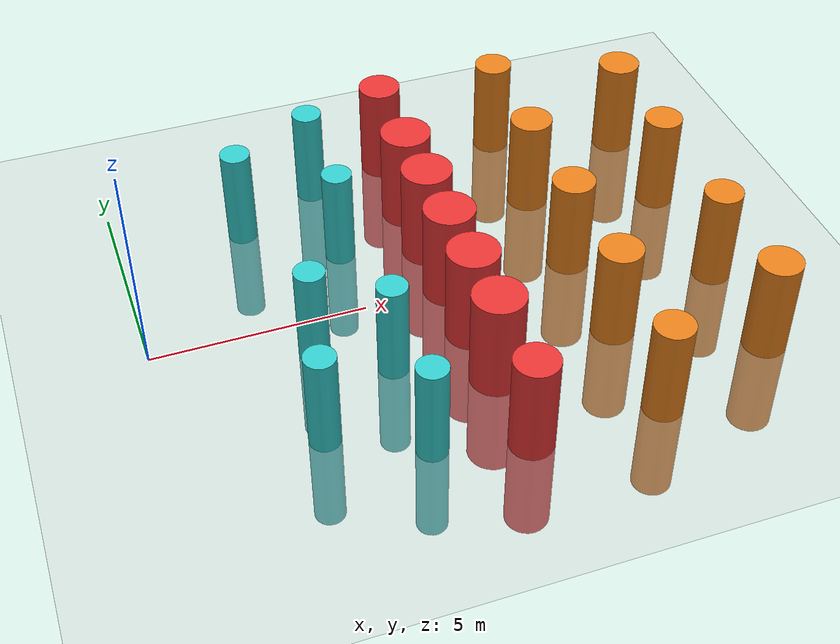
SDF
<?xml version="1.0" ?>
<sdf version="1.6">
  <world name="dense_forest">

    <physics type="ode">
      <max_step_size>0.001</max_step_size>
      <real_time_factor>1.0</real_time_factor>
      <real_time_update_rate>1000</real_time_update_rate>
      <gravity>0 0 -9.81</gravity>
      <ode>
        <solver><type>quick</type><iters>50</iters><sor>1.3</sor></solver>
        <constraints>
          <cfm>0.0</cfm><erp>0.2</erp>
          <contact_max_correcting_vel>100.0</contact_max_correcting_vel>
          <contact_surface_layer>0.001</contact_surface_layer>
        </constraints>
      </ode>
    </physics>

    <scene>
      <ambient>0.5 0.5 0.5 1.0</ambient>
      <shadows>false</shadows>
      <grid>false</grid>
    </scene>

    <include><uri>model://sun</uri></include>
    <include><uri>model://ground_plane</uri></include>

    <!-- ===== Section A: Sparse entrance (x=3~5), all gaps ≥ 2.0m → passable ===== -->
    <!-- Section A: 柱子間距 ≥ 2.0m (含膨脹後淨通道 ≥ 0.8m) -->
    <!-- 有效半徑 = 柱半徑 + inflation(0.2) + B-spline margin(0.1) ≈ 柱半徑 + 0.3 -->
    <!-- 兩柱間距需 ≥ 2×有效半徑 + 0.8m 通道 -->
    <model name="a1"><static>true</static><pose>3 -3.5 0 0 0 0</pose>
      <link name="link">
        <collision name="c"><geometry><cylinder><radius>0.35</radius><length>4.8</length></cylinder></geometry></collision>
        <visual name="v"><geometry><cylinder><radius>0.35</radius><length>4.8</length></cylinder></geometry>
          <material><ambient>0.2 0.8 0.8 1</ambient><diffuse>0.2 0.8 0.8 1</diffuse></material></visual>
      </link></model>

    <model name="a2"><static>true</static><pose>3.5 -1.0 0 0 0 0</pose>
      <link name="link">
        <collision name="c"><geometry><cylinder><radius>0.35</radius><length>4.8</length></cylinder></geometry></collision>
        <visual name="v"><geometry><cylinder><radius>0.35</radius><length>4.8</length></cylinder></geometry>
          <material><ambient>0.2 0.8 0.8 1</ambient><diffuse>0.2 0.8 0.8 1</diffuse></material></visual>
      </link></model>

    <model name="a3"><static>true</static><pose>3 3.5 0 0 0 0</pose>
      <link name="link">
        <collision name="c"><geometry><cylinder><radius>0.35</radius><length>4.8</length></cylinder></geometry></collision>
        <visual name="v"><geometry><cylinder><radius>0.35</radius><length>4.8</length></cylinder></geometry>
          <material><ambient>0.2 0.8 0.8 1</ambient><diffuse>0.2 0.8 0.8 1</diffuse></material></visual>
      </link></model>

    <model name="a4"><static>true</static><pose>5 -4.5 0 0 0 0</pose>
      <link name="link">
        <collision name="c"><geometry><cylinder><radius>0.35</radius><length>4.8</length></cylinder></geometry></collision>
        <visual name="v"><geometry><cylinder><radius>0.35</radius><length>4.8</length></cylinder></geometry>
          <material><ambient>0.2 0.8 0.8 1</ambient><diffuse>0.2 0.8 0.8 1</diffuse></material></visual>
      </link></model>

    <model name="a5"><static>true</static><pose>5 -2.0 0 0 0 0</pose>
      <link name="link">
        <collision name="c"><geometry><cylinder><radius>0.35</radius><length>4.8</length></cylinder></geometry></collision>
        <visual name="v"><geometry><cylinder><radius>0.35</radius><length>4.8</length></cylinder></geometry>
          <material><ambient>0.2 0.8 0.8 1</ambient><diffuse>0.2 0.8 0.8 1</diffuse></material></visual>
      </link></model>

    <model name="a6"><static>true</static><pose>5 2.0 0 0 0 0</pose>
      <link name="link">
        <collision name="c"><geometry><cylinder><radius>0.35</radius><length>4.8</length></cylinder></geometry></collision>
        <visual name="v"><geometry><cylinder><radius>0.35</radius><length>4.8</length></cylinder></geometry>
          <material><ambient>0.2 0.8 0.8 1</ambient><diffuse>0.2 0.8 0.8 1</diffuse></material></visual>
      </link></model>

    <model name="a7"><static>true</static><pose>5 4.5 0 0 0 0</pose>
      <link name="link">
        <collision name="c"><geometry><cylinder><radius>0.35</radius><length>4.8</length></cylinder></geometry></collision>
        <visual name="v"><geometry><cylinder><radius>0.35</radius><length>4.8</length></cylinder></geometry>
          <material><ambient>0.2 0.8 0.8 1</ambient><diffuse>0.2 0.8 0.8 1</diffuse></material></visual>
      </link></model>

    <!-- ===== Section B: Dense center wall (x=7), 多個 0.9m 窄縫考驗規劃器 ===== -->
    <!-- 故意設計多個 borderline passable 縫隙測試 planner 在窄空間的穩定性    -->
    <model name="b1"><static>true</static><pose>7 -5 0 0 0 0</pose>
      <link name="link">
        <collision name="c"><geometry><cylinder><radius>0.5</radius><length>4.8</length></cylinder></geometry></collision>
        <visual name="v"><geometry><cylinder><radius>0.5</radius><length>4.8</length></cylinder></geometry>
          <material><ambient>0.9 0.2 0.2 1</ambient><diffuse>0.9 0.2 0.2 1</diffuse></material></visual>
      </link></model>

    <model name="b2"><static>true</static><pose>7 -3 0 0 0 0</pose>
      <link name="link">
        <collision name="c"><geometry><cylinder><radius>0.6</radius><length>4.8</length></cylinder></geometry></collision>
        <visual name="v"><geometry><cylinder><radius>0.6</radius><length>4.8</length></cylinder></geometry>
          <material><ambient>0.9 0.2 0.2 1</ambient><diffuse>0.9 0.2 0.2 1</diffuse></material></visual>
      </link></model>

    <model name="b3"><static>true</static><pose>7 -1.5 0 0 0 0</pose>
      <link name="link">
        <collision name="c"><geometry><cylinder><radius>0.6</radius><length>4.8</length></cylinder></geometry></collision>
        <visual name="v"><geometry><cylinder><radius>0.6</radius><length>4.8</length></cylinder></geometry>
          <material><ambient>0.9 0.2 0.2 1</ambient><diffuse>0.9 0.2 0.2 1</diffuse></material></visual>
      </link></model>

    <model name="b4"><static>true</static><pose>7 0 0 0 0 0</pose>
      <link name="link">
        <collision name="c"><geometry><cylinder><radius>0.6</radius><length>4.8</length></cylinder></geometry></collision>
        <visual name="v"><geometry><cylinder><radius>0.6</radius><length>4.8</length></cylinder></geometry>
          <material><ambient>0.9 0.2 0.2 1</ambient><diffuse>0.9 0.2 0.2 1</diffuse></material></visual>
      </link></model>

    <model name="b5"><static>true</static><pose>7 1.5 0 0 0 0</pose>
      <link name="link">
        <collision name="c"><geometry><cylinder><radius>0.6</radius><length>4.8</length></cylinder></geometry></collision>
        <visual name="v"><geometry><cylinder><radius>0.6</radius><length>4.8</length></cylinder></geometry>
          <material><ambient>0.9 0.2 0.2 1</ambient><diffuse>0.9 0.2 0.2 1</diffuse></material></visual>
      </link></model>

    <model name="b6"><static>true</static><pose>7 3 0 0 0 0</pose>
      <link name="link">
        <collision name="c"><geometry><cylinder><radius>0.6</radius><length>4.8</length></cylinder></geometry></collision>
        <visual name="v"><geometry><cylinder><radius>0.6</radius><length>4.8</length></cylinder></geometry>
          <material><ambient>0.9 0.2 0.2 1</ambient><diffuse>0.9 0.2 0.2 1</diffuse></material></visual>
      </link></model>

    <model name="b7"><static>true</static><pose>7 5 0 0 0 0</pose>
      <link name="link">
        <collision name="c"><geometry><cylinder><radius>0.5</radius><length>4.8</length></cylinder></geometry></collision>
        <visual name="v"><geometry><cylinder><radius>0.5</radius><length>4.8</length></cylinder></geometry>
          <material><ambient>0.9 0.2 0.2 1</ambient><diffuse>0.9 0.2 0.2 1</diffuse></material></visual>
      </link></model>

    <!-- ===== Section C: Medium density (x=10~13), all gaps ~1.0–1.5m → passable ===== -->
    <model name="c1"><static>true</static><pose>10 -5 0 0 0 0</pose>
      <link name="link">
        <collision name="c"><geometry><cylinder><radius>0.45</radius><length>4.8</length></cylinder></geometry></collision>
        <visual name="v"><geometry><cylinder><radius>0.45</radius><length>4.8</length></cylinder></geometry>
          <material><ambient>0.9 0.5 0.1 1</ambient><diffuse>0.9 0.5 0.1 1</diffuse></material></visual>
      </link></model>

    <model name="c2"><static>true</static><pose>10 -2.5 0 0 0 0</pose>
      <link name="link">
        <collision name="c"><geometry><cylinder><radius>0.5</radius><length>4.8</length></cylinder></geometry></collision>
        <visual name="v"><geometry><cylinder><radius>0.5</radius><length>4.8</length></cylinder></geometry>
          <material><ambient>0.9 0.5 0.1 1</ambient><diffuse>0.9 0.5 0.1 1</diffuse></material></visual>
      </link></model>

    <model name="c3"><static>true</static><pose>10 0 0 0 0 0</pose>
      <link name="link">
        <collision name="c"><geometry><cylinder><radius>0.5</radius><length>4.8</length></cylinder></geometry></collision>
        <visual name="v"><geometry><cylinder><radius>0.5</radius><length>4.8</length></cylinder></geometry>
          <material><ambient>0.9 0.5 0.1 1</ambient><diffuse>0.9 0.5 0.1 1</diffuse></material></visual>
      </link></model>

    <model name="c4"><static>true</static><pose>10 2.5 0 0 0 0</pose>
      <link name="link">
        <collision name="c"><geometry><cylinder><radius>0.5</radius><length>4.8</length></cylinder></geometry></collision>
        <visual name="v"><geometry><cylinder><radius>0.5</radius><length>4.8</length></cylinder></geometry>
          <material><ambient>0.9 0.5 0.1 1</ambient><diffuse>0.9 0.5 0.1 1</diffuse></material></visual>
      </link></model>

    <model name="c5"><static>true</static><pose>10 5 0 0 0 0</pose>
      <link name="link">
        <collision name="c"><geometry><cylinder><radius>0.45</radius><length>4.8</length></cylinder></geometry></collision>
        <visual name="v"><geometry><cylinder><radius>0.45</radius><length>4.8</length></cylinder></geometry>
          <material><ambient>0.9 0.5 0.1 1</ambient><diffuse>0.9 0.5 0.1 1</diffuse></material></visual>
      </link></model>

    <model name="c6"><static>true</static><pose>13 -4 0 0 0 0</pose>
      <link name="link">
        <collision name="c"><geometry><cylinder><radius>0.5</radius><length>4.8</length></cylinder></geometry></collision>
        <visual name="v"><geometry><cylinder><radius>0.5</radius><length>4.8</length></cylinder></geometry>
          <material><ambient>0.9 0.5 0.1 1</ambient><diffuse>0.9 0.5 0.1 1</diffuse></material></visual>
      </link></model>

    <model name="c7"><static>true</static><pose>13 -1.5 0 0 0 0</pose>
      <link name="link">
        <collision name="c"><geometry><cylinder><radius>0.45</radius><length>4.8</length></cylinder></geometry></collision>
        <visual name="v"><geometry><cylinder><radius>0.45</radius><length>4.8</length></cylinder></geometry>
          <material><ambient>0.9 0.5 0.1 1</ambient><diffuse>0.9 0.5 0.1 1</diffuse></material></visual>
      </link></model>

    <model name="c8"><static>true</static><pose>13 1.5 0 0 0 0</pose>
      <link name="link">
        <collision name="c"><geometry><cylinder><radius>0.45</radius><length>4.8</length></cylinder></geometry></collision>
        <visual name="v"><geometry><cylinder><radius>0.45</radius><length>4.8</length></cylinder></geometry>
          <material><ambient>0.9 0.5 0.1 1</ambient><diffuse>0.9 0.5 0.1 1</diffuse></material></visual>
      </link></model>

    <model name="c9"><static>true</static><pose>13 4 0 0 0 0</pose>
      <link name="link">
        <collision name="c"><geometry><cylinder><radius>0.5</radius><length>4.8</length></cylinder></geometry></collision>
        <visual name="v"><geometry><cylinder><radius>0.5</radius><length>4.8</length></cylinder></geometry>
          <material><ambient>0.9 0.5 0.1 1</ambient><diffuse>0.9 0.5 0.1 1</diffuse></material></visual>
      </link></model>

  </world>
</sdf>
